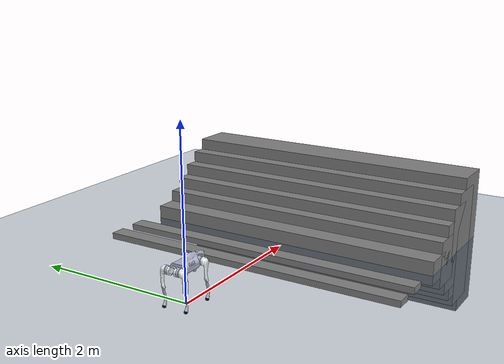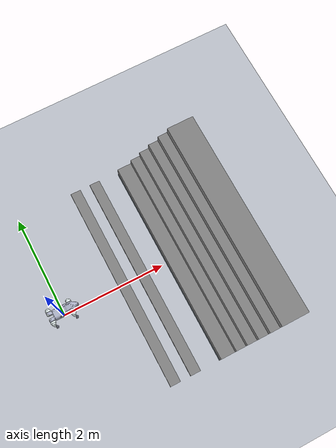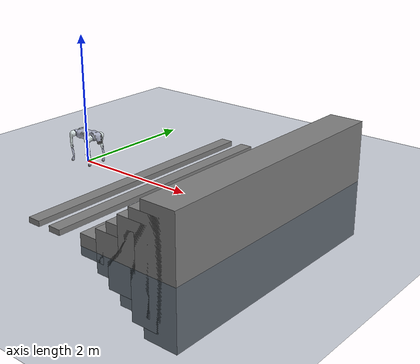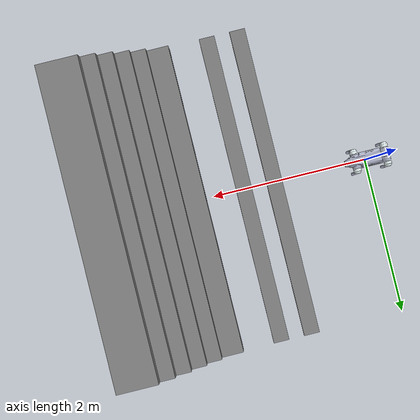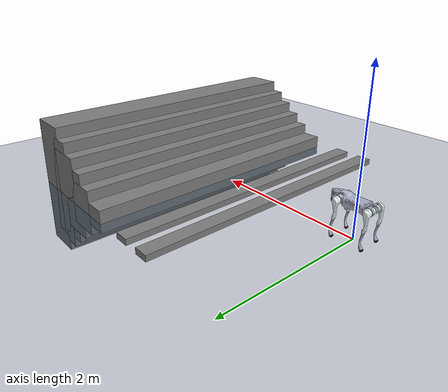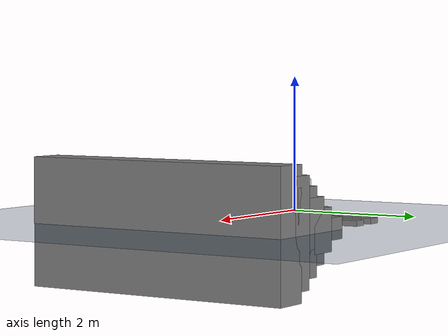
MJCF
<mujoco model="go2 scene">
  <compiler angle="radian" meshdir="assets/"/>
  <option impratio="100" cone="elliptic"/>
  <size nkey="1"/>
  <visual>
    <global azimuth="-130" elevation="-20"/>
    <headlight ambient="0.3 0.3 0.3" diffuse="0.6 0.6 0.6" specular="0 0 0"/>
    <rgba haze="0.15 0.25 0.35 1"/>
  </visual>
  <statistic extent="0.8" center="0 0 0.1"/>
  <default class="main">
    <default class="go2">
      <joint armature="0.01" damping="0.1" frictionloss="0.2"/>
      <geom condim="1" friction="0.4" margin="0.001"/>
      <general forcerange="-23.7 23.7" biastype="affine" gainprm="150" biasprm="0 -150 -10"/>
      <default class="hip">
        <default class="front_hip">
          <joint range="-1.5708 3.4907"/>
        </default>
        <default class="back_hip">
          <joint range="-0.5236 4.5379"/>
        </default>
      </default>
      <default class="knee">
        <joint range="-2.7227 -0.83776"/>
        <general forcerange="-45.43 45.43" gainprm="200" biasprm="0 -200 -12"/>
      </default>
      <default class="visual">
        <geom type="mesh" contype="0" conaffinity="0" group="2"/>
      </default>
      <default class="collision">
        <geom group="3"/>
        <default class="foot">
          <geom size="0.022 0 0" condim="6" priority="1" friction="0.4 0.02 0.01"/>
        </default>
      </default>
    </default>
  </default>
  <asset>
    <texture type="skybox" builtin="gradient" rgb1="0.3 0.5 0.7" rgb2="0 0 0" width="512" height="3072"/>
    <texture type="2d" name="groundplane" builtin="checker" mark="edge" rgb1="0.2 0.3 0.4" rgb2="0.1 0.2 0.3" markrgb="0.8 0.8 0.8" width="300" height="300"/>
    <material name="metal" rgba="0.9 0.95 0.95 1"/>
    <material name="black" rgba="0 0 0 1"/>
    <material name="white"/>
    <material name="gray" rgba="0.671705 0.692426 0.77427 1"/>
    <material name="groundplane" texture="groundplane" texuniform="true" texrepeat="5 5" reflectance="0.2"/>
    <mesh name="base_0" file="base_0.stl"/>
    <mesh name="base_1" file="base_1.stl"/>
    <mesh name="base_2" file="base_2.stl"/>
    <mesh name="base_3" file="base_3.stl"/>
    <mesh name="base_4" file="base_4.stl"/>
    <mesh name="hip_0" file="hip_0.stl"/>
    <mesh name="hip_1" file="hip_1.stl"/>
    <mesh name="thigh_0" file="thigh_0.stl"/>
    <mesh name="thigh_1" file="thigh_1.stl"/>
    <mesh name="thigh_mirror_0" file="thigh_mirror_0.stl"/>
    <mesh name="thigh_mirror_1" file="thigh_mirror_1.stl"/>
    <mesh name="calf_0" file="calf_0.stl"/>
    <mesh name="calf_1" file="calf_1.stl"/>
    <mesh name="calf_mirror_0" file="calf_mirror_0.stl"/>
    <mesh name="calf_mirror_1" file="calf_mirror_1.stl"/>
    <mesh name="foot" file="foot.stl"/>
  </asset>
  <worldbody>
    <geom name="floor" size="0 0 0.05" type="plane" material="groundplane"/>
    <geom size="0.1 2 0.04" pos="1.2 0 0.04" type="box"/>
    <geom size="0.1 2 0.04" pos="1.6 0 0.04" type="box"/>
    <geom size="0.2 2 0.15" pos="2.3 0 0.02" type="box"/>
    <geom size="0.22 2 0.3" pos="2.6 0 0.02" type="box"/>
    <geom size="0.23 2 0.45" pos="2.8 0 0.02" type="box"/>
    <geom size="0.24 2 0.6" pos="3 0 0.02" type="box"/>
    <geom size="0.25 2 0.75" pos="3.2 0 0.02" type="box"/>
    <geom size="0.26 2 0.9" pos="3.4 0 0.02" type="box"/>
    <light pos="0 0 1.5" dir="0 0 -1" directional="true"/>
    <body name="base_link" childclass="go2" pos="0 0 0.445">
      <inertial pos="0.021112 0 -0.005366" quat="-0.000543471 0.713435 -0.00173769 0.700719" mass="6.921" diaginertia="0.107027 0.0980771 0.0244531"/>
      <joint type="free" limited="false" actuatorfrclimited="false" armature="0" damping="0" frictionloss="0"/>
      <geom class="visual" material="black" mesh="base_0"/>
      <geom class="visual" material="black" mesh="base_1"/>
      <geom class="visual" material="black" mesh="base_2"/>
      <geom class="visual" material="white" mesh="base_3"/>
      <geom class="visual" material="gray" mesh="base_4"/>
      <geom class="collision" size="0.1881 0.04675 0.057" type="box"/>
      <geom class="collision" size="0.05 0.045" pos="0.285 0 0.01" type="cylinder"/>
      <geom class="collision" size="0.047" pos="0.293 0 -0.06"/>
      <site name="imu" pos="-0.02557 0 0.04232"/>
      <body name="FL_hip" pos="0.1934 0.0465 0">
        <geom class="visual" material="metal" mesh="hip_0"/>
        <geom class="visual" material="gray" mesh="hip_1"/>
        <geom class="collision" size="0.046 0.02" pos="0 0.08 0" quat="0.707107 0.707107 0 0" type="cylinder"/>
        <body name="FL_thigh" pos="0 0.0955 0">
          <joint name="FL_thigh_joint" class="front_hip" pos="0 0 0" axis="0 1 0"/>
          <geom class="visual" material="metal" mesh="thigh_0"/>
          <geom class="collision" size="0.1065 0.01225 0.017" pos="0 0 -0.1065" quat="0.707107 0 0.707107 0" type="box"/>
          <body name="FL_calf" pos="0 0 -0.213">
            <joint name="FL_calf_joint" class="knee" pos="0 0 0" axis="0 1 0"/>
            <geom class="visual" material="gray" mesh="calf_0"/>
            <geom class="visual" pos="0 0 -0.213" material="black" mesh="foot"/>
            <geom name="FL" class="foot" pos="-0.002 0 -0.213"/>
          </body>
        </body>
      </body>
      <body name="FR_hip" pos="0.1934 -0.0465 0">
        <geom class="visual" quat="4.63268e-05 1 0 0" material="metal" mesh="hip_0"/>
        <geom class="visual" quat="4.63268e-05 1 0 0" material="gray" mesh="hip_1"/>
        <geom class="collision" size="0.046 0.02" pos="0 -0.08 0" quat="0.707107 0.707107 0 0" type="cylinder"/>
        <body name="FR_thigh" pos="0 -0.0955 0">
          <joint name="FR_thigh_joint" class="front_hip" pos="0 0 0" axis="0 1 0"/>
          <geom class="visual" material="metal" mesh="thigh_mirror_0"/>
          <geom class="collision" size="0.1065 0.01225 0.017" pos="0 0 -0.1065" quat="0.707107 0 0.707107 0" type="box"/>
          <body name="FR_calf" pos="0 0 -0.213">
            <joint name="FR_calf_joint" class="knee" pos="0 0 0" axis="0 1 0"/>
            <geom class="visual" material="gray" mesh="calf_mirror_0"/>
            <geom class="visual" pos="0 0 -0.213" material="black" mesh="foot"/>
            <geom name="FR" class="foot" pos="-0.002 0 -0.213"/>
          </body>
        </body>
      </body>
      <body name="RL_hip" pos="-0.1934 0.0465 0">
        <geom class="visual" quat="4.63268e-05 0 1 0" material="metal" mesh="hip_0"/>
        <geom class="visual" quat="4.63268e-05 0 1 0" material="gray" mesh="hip_1"/>
        <geom class="collision" size="0.046 0.02" pos="0 0.08 0" quat="0.707107 0.707107 0 0" type="cylinder"/>
        <body name="RL_thigh" pos="0 0.0955 0">
          <joint name="RL_thigh_joint" class="back_hip" pos="0 0 0" axis="0 1 0"/>
          <geom class="visual" material="metal" mesh="thigh_0"/>
          <geom class="collision" size="0.1065 0.01225 0.017" pos="0 0 -0.1065" quat="0.707107 0 0.707107 0" type="box"/>
          <body name="RL_calf" pos="0 0 -0.213">
            <joint name="RL_calf_joint" class="knee" pos="0 0 0" axis="0 1 0"/>
            <geom class="visual" material="gray" mesh="calf_0"/>
            <geom class="visual" pos="0 0 -0.213" material="black" mesh="foot"/>
            <geom name="RL" class="foot" pos="-0.002 0 -0.213"/>
          </body>
        </body>
      </body>
      <body name="RR_hip" pos="-0.1934 -0.0465 0">
        <geom class="visual" quat="2.14617e-09 4.63268e-05 4.63268e-05 -1" material="metal" mesh="hip_0"/>
        <geom class="visual" quat="2.14617e-09 4.63268e-05 4.63268e-05 -1" material="gray" mesh="hip_1"/>
        <geom class="collision" size="0.046 0.02" pos="0 -0.08 0" quat="0.707107 0.707107 0 0" type="cylinder"/>
        <body name="RR_thigh" pos="0 -0.0955 0">
          <joint name="RR_thigh_joint" class="back_hip" pos="0 0 0" axis="0 1 0"/>
          <geom class="visual" material="metal" mesh="thigh_mirror_0"/>
          <geom class="collision" size="0.1065 0.01225 0.017" pos="0 0 -0.1065" quat="0.707107 0 0.707107 0" type="box"/>
          <body name="RR_calf" pos="0 0 -0.213">
            <joint name="RR_calf_joint" class="knee" pos="0 0 0" axis="0 1 0"/>
            <geom class="visual" material="gray" mesh="calf_mirror_0"/>
            <geom class="visual" pos="0 0 -0.213" material="black" mesh="foot"/>
            <geom name="RR" class="foot" pos="-0.002 0 -0.213"/>
          </body>
        </body>
      </body>
    </body>
  </worldbody>
  <actuator>
    <general name="FR_thigh" class="hip" joint="FR_thigh_joint"/>
    <general name="FR_calf" class="knee" joint="FR_calf_joint"/>
    <general name="FL_thigh" class="hip" joint="FL_thigh_joint"/>
    <general name="FL_calf" class="knee" joint="FL_calf_joint"/>
    <general name="RR_thigh" class="hip" joint="RR_thigh_joint"/>
    <general name="RR_calf" class="knee" joint="RR_calf_joint"/>
    <general name="RL_thigh" class="hip" joint="RL_thigh_joint"/>
    <general name="RL_calf" class="knee" joint="RL_calf_joint"/>
  </actuator>
  <sensor>
    <jointpos joint="FR_thigh_joint" name="FR_thigh_pos"/>
    <jointpos joint="FR_calf_joint" name="FR_calf_pos"/>
    <jointpos joint="FL_thigh_joint" name="FL_thigh_pos"/>
    <jointpos joint="FL_calf_joint" name="FL_calf_pos"/>
    <jointpos joint="RR_thigh_joint" name="RR_thigh_pos"/>
    <jointpos joint="RR_calf_joint" name="RR_calf_pos"/>
    <jointpos joint="RL_thigh_joint" name="RL_thigh_pos"/>
    <jointpos joint="RL_calf_joint" name="RL_calf_pos"/>
    <jointvel joint="FR_thigh_joint" name="FR_thigh_vel"/>
    <jointvel joint="FR_calf_joint" name="FR_calf_vel"/>
    <jointvel joint="FL_thigh_joint" name="FL_thigh_vel"/>
    <jointvel joint="FL_calf_joint" name="FL_calf_vel"/>
    <jointvel joint="RR_thigh_joint" name="RR_thigh_vel"/>
    <jointvel joint="RR_calf_joint" name="RR_calf_vel"/>
    <jointvel joint="RL_thigh_joint" name="RL_thigh_vel"/>
    <jointvel joint="RL_calf_joint" name="RL_calf_vel"/>
    <framequat objtype="site" objname="imu" name="imu_quat"/>
    <gyro site="imu" name="imu_gyro"/>
    <accelerometer site="imu" name="imu_acc"/>
  </sensor>
  <keyframe>
    <key name="stand_pose" time="29.61" qpos="0.458342 0.503768 0.057886 -9.69831e-06 -0.892975 0.450106 -1.92534e-05 1.00591 -1.00005 1.00656 -0.766101 1.00591 -1.00005 1.00591 -1.00005" qvel="0 0 0 0 0 0 0 0 3.75786e-11 0 4.25226e-12 0 -3.00461e-12 0" ctrl="1 0.39 1 -1 1 -1 1 -1"/>
  </keyframe>
</mujoco>
